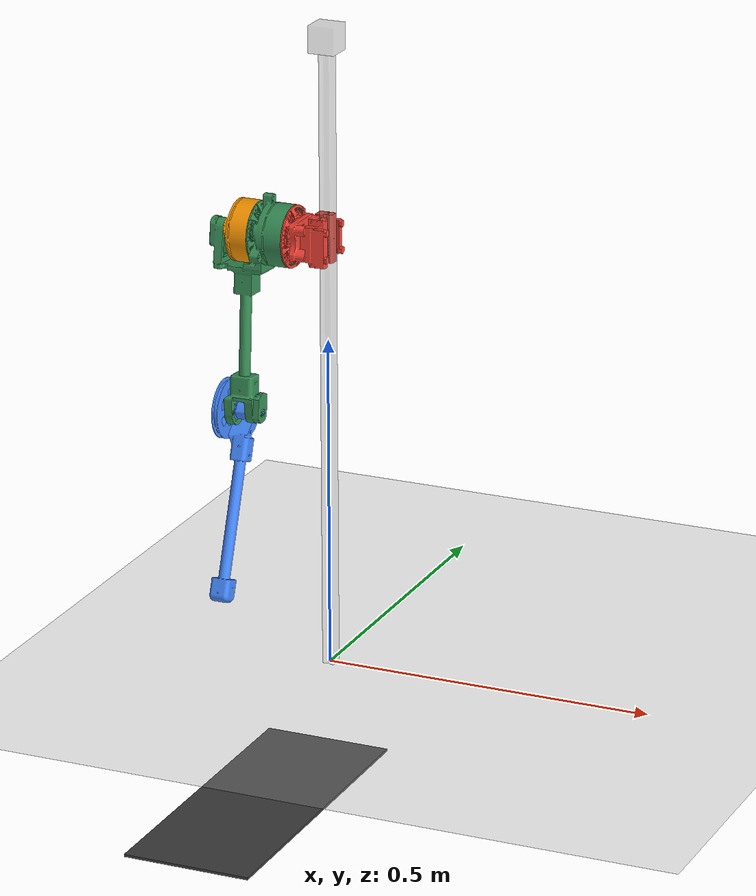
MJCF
<mujoco model='guro-v1'>
  <compiler inertiafromgeom='auto' angle='degree' meshdir='STL-Files'/>
  <option timestep='0.0005' iterations='50'  gravity='0 0 -9.81'>
  	<flag energy='enable'/>
  </option>

  	<visual>
  		<global fovy='80'/>
	    <quality shadowsize='4098'/>
	    <map znear='0.2'/>
	    <scale framelength='0.5' framewidth='0.005' forcewidth='0.0075' contactwidth='0.1' contactheight='0.01'/>
  	</visual>

	 <default>
        <geom  condim="1" conaffinity="1" contype="1" pos='0 0 0' margin="0.001"  type='mesh'/>
        <!-- from cassie: contype='0' conaffinity='0' condim='1' solref='0.005 1' -->
        <!-- and for the floor they used: condim='3' conaffinity='15' -->
		<joint limited="true" damping="0.05" margin="0.01"/>
	    <motor gear='1' forcelimited='true' ctrllimited='true'/>
	    <mesh scale='0.001 0.001 0.001'/>
	    <default class='axis'>
	    	<geom type='box' mass='0.001'/>
	    </default>
	</default>

	<asset>
	    <texture type='skybox' builtin='gradient' width='128' height='128' rgb1='0.4 0.6 0.8' rgb2='0.6 0.6 0.6'/>
	    <texture name='plane' type='2d' builtin='checker' rgb1='0.75 0.75 0.75' rgb2='0.6 0.6 0.6' width='512' height='512'/>
	    <material name='plane' reflectance='0.0' texture='plane' texrepeat='1 1' texuniform='true'/>
	    <material name='plane_small' reflectance='0.0' texture='plane' texrepeat='4 4' texuniform='true'/>
	    <material name='mat_linear_guide' reflectance='0.1' rgba='0.5 0.5 0.5 0.35'/>
	    <material name='mat_sledge' reflectance='0.1' rgba='.96 0.26 0.21 1'/>
	    <material name='mat_thigh' reflectance='0.1' rgba='0.22 .56 0.34 1'/>
	    <material name='mat_shank' reflectance='0.1' rgba='0.27 0.54 1 1'/>
	    <material name='mat_pulley' reflectance='0.1' rgba='1 0.6 0 1'/>
	    <material name='mat_ground_plate' reflectance='0' rgba='0.25 0.25 0.25 1'/>

	    <mesh name='linear_guide_rail' file='linear_guide_rail.stl'/>
	    <mesh name='hip_motor' file='hip_motor_20k_faces.stl'/>
	    <mesh name='thigh' file='thigh_asm_20k_faces.stl'/>
	    <mesh name='shank' file='shank_asm_20k_faces.stl'/>
	    <mesh name='hip_pulley' file='motor_rotor_pully_asm_8k_faces.stl'/>
	</asset>

  <worldbody>

	<light directional="true" cutoff="4" exponent="20" diffuse="1 1 1" specular="0 0 0" pos="0 .3 2.5" dir="0 -.3 -2.5 "/>
	<geom name='floor' pos='0 0 0' size='1 1 .125' type='plane' material='plane'
		  condim='3' friction='1 0.1 0.1' solimp="0.98 0.99 0.001" solref="0.02 10"/>
		  <!-- default contact params: solimp="0.9 0.95 0.001" solref="0.02 1" -->
		  <!-- hardest ground with good damping: solimp="1 1 0.001" solref="0.02 10" -->
		  <!-- good GRFs: solimp='1e-6 1e-6 1e-3' solref='7.5e-4 5e1' found on mujoco forum -->
		  <!-- Best Ground Contact Model Params according to the Identification (18.08.18):
		       solimp="25.293217747579927 0.0 0.3611646095232781" solref="0.10975158338754316 0.0" -->
		  <!-- Best values from the first identification:
		       solref='0.004 0' solimp='0 7.0842207 0.00541418'-->
		  <!-- friction='2.5 0.005 0.0001'  -->

 	<body name='assembly_with_guide' pos='0 0 0'>
		<geom mesh='linear_guide_rail' euler='0 0 90' pos='0 0 0.1' material='mat_linear_guide'/>
		<geom type='box' pos='0 0 0.95' size='0.02 0.02 0.02' material='mat_linear_guide'/>

		<body name='hip_motor_on_sledge' pos='-0.0163832 5.2724334e-3 0.65'>
			<geom mesh='hip_motor' condim='3' material='mat_sledge'/>
			<inertial mass='0.806'  pos='-1.6286e-2 -0.5906e-2 -0.0215e-2'  fullinertia='644.5e-6 807e-6 802.5e-6 -9.2e-6 0.77e-6 -0.097e-6'/>
			<joint name='vertical_hip_slide' type='slide' axis='0 0 1' ref='0.65' limited='false'
				damping='0.3181948092133513' frictionloss='1.4998656984458671'/>
			<!-- damping='0.3181948092133513' frictionloss='1.4998656984458671' -->

			<body name='thigh' pos='-135.887e-3 -6.439e-3 0'>
				<joint name='hip_joint' type='hinge' pos='0 0 0' axis='1 0 0' limited='false' ref='-4'/>
				<geom  mesh='thigh' material='mat_thigh'/>
				<inertial mass='0.979'  pos='4.8623e-2 -0.2495e-2 -3.6737e-2'  fullinertia='7770e-6 7970e-6 1219e-6 -54.2e-6 -796e-6 -462e-6'/>

					<body name='hip_pulley' pos='-6.427e-3 0 0'>
						<joint name='hip_pulley_joint' type='hinge' axis='1 0 0' limited='false' ref='0'/>
						<inertial mass='0.364'  pos='2.7943e-2 0 0.0003e-2'  fullinertia='505.8e-6 301e-6 301e-6 0 0.024e-6 0'/>
						<geom mesh='hip_pulley' material='mat_pulley'/>
					</body>

					<body name='shank' pos='5.573e-3 -18.370e-3 -269.374e-3'>
						<joint name='knee_joint' type='hinge' pos='0 0 0' axis='1 0 0' ref='164' range='60 168'
						 solimplimit='0.99 0.99 0.01' solreflimit="0.01 1"/>
						<geom  mesh='shank' material='mat_shank'/>
						<inertial mass='0.180'  pos='1.1459e-2 -1.2771e-2 -6.3122e-2'  fullinertia='1786e-6 1587e-6 259e-6 24.4e-6 89.9e-6 -530e-6'/>

					</body>
			</body>

		</body>

  	</body>

  	<body name='ground_plane' pos='-0.12 0 -0.25'>
				<geom type='box' pos='0 0 0' size='0.1 0.25 0.002' material='mat_ground_plate'
		  		condim='3' friction='1 0.1 0.1' solimp="0.98 0.99 0.001" solref="0.02 10"/>
	</body>

  </worldbody>

  	<actuator>
	    <motor joint='hip_joint' forcerange='-5 5' ctrlrange='-5 5'/>
  		<motor joint='hip_pulley_joint' ctrlrange='-10 10' forcerange='-10 10'/>
  		<motor joint='knee_joint' ctrlrange='-25 25' forcerange='-25 25'/>
    </actuator>

    <contact>
    	<exclude body1='assembly_with_guide' body2='hip_motor_on_sledge'/>
    </contact>

</mujoco>
